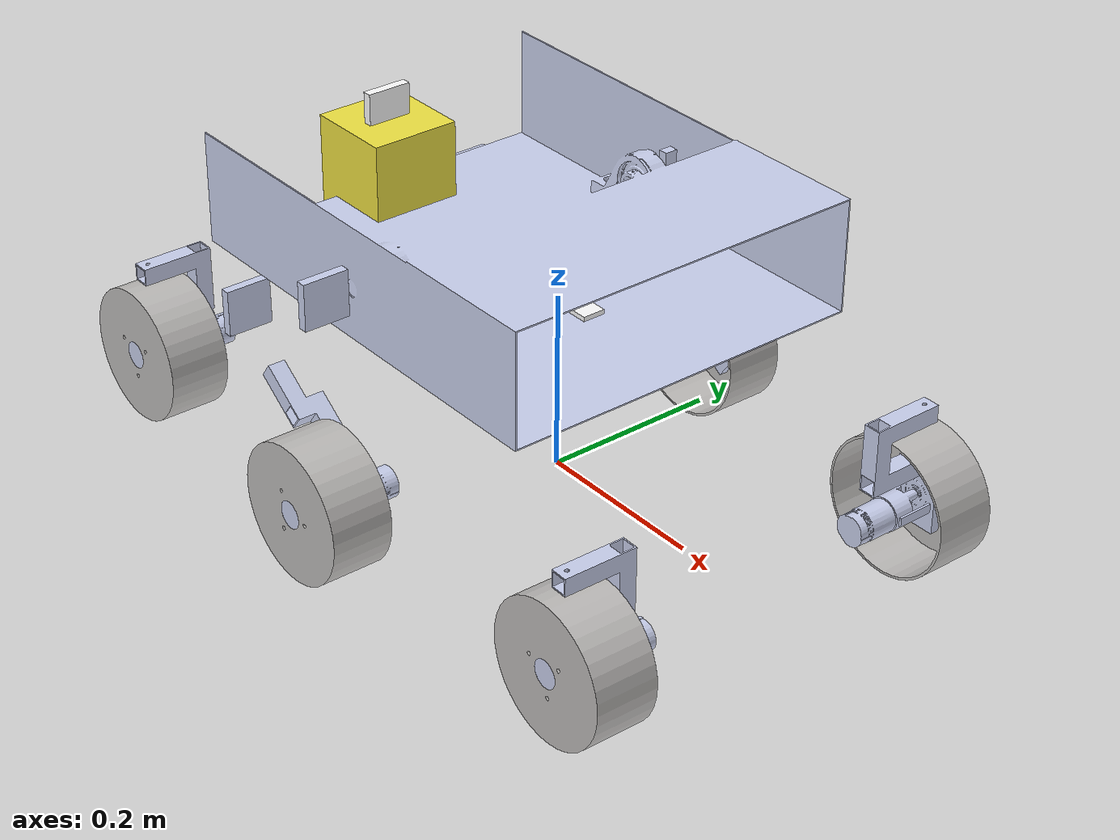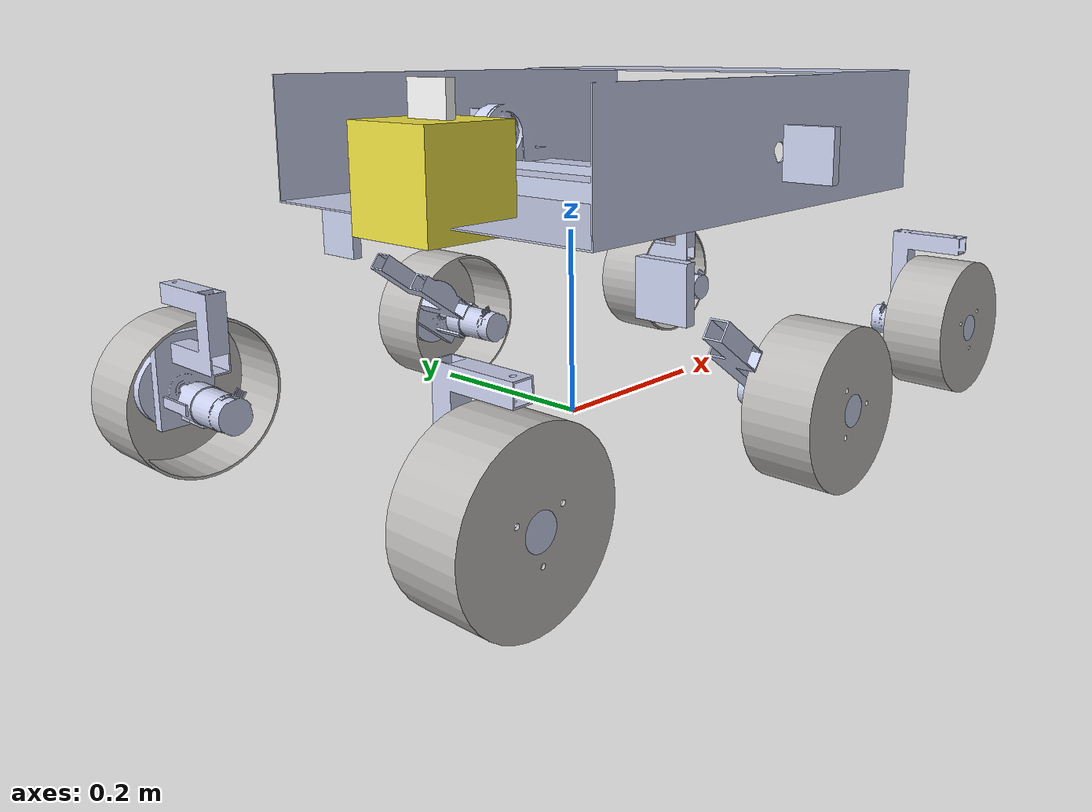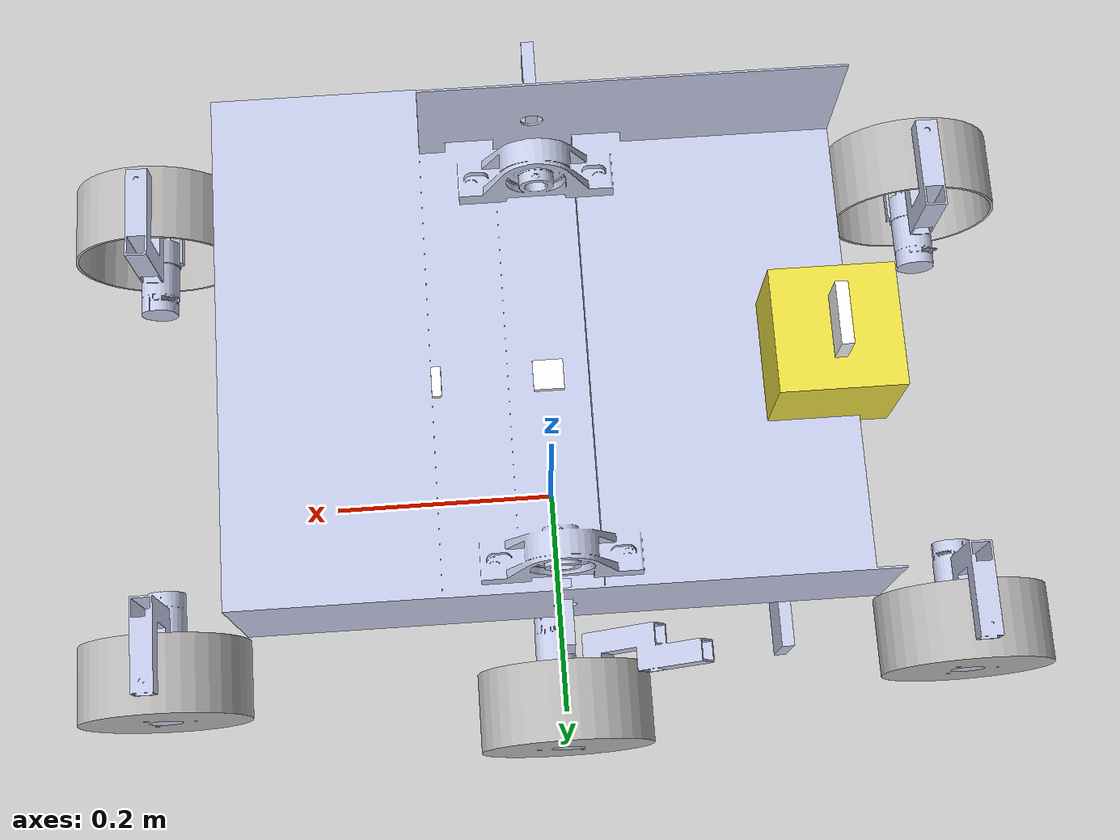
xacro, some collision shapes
<?xml version="1.0" encoding="utf-8"?>
<robot name="rover" xmlns:xacro="http://ros.org/wiki/xacro">
  <xacro:arg name="imu_enable" default="true"/>
  <xacro:arg name="gps_enable" default="true"/>
  <!-- Si el sensor kinect esta habilitado entonces la camara y lidar no lo pueden estar-->
  <xacro:arg name="kinect_enable" default="false"/>
  <xacro:arg name="camera_and_lidar_enable" default="true"/>

  <link name="base_footprint"/>

  <link
    name="Caja">
    <inertial>
      <origin
        xyz="0.019215 0.035889 0.05"
        rpy="0 0 0" />
      <mass
        value="0.85251" />
      <inertia
        ixx="0.0069418"
        ixy="-1.7693E-15"
        ixz="3.7876E-09"
        iyy="0.017066"
        iyz="1.5323E-16"
        izz="0.010668" />
    </inertial>
    <visual>
      <origin
        xyz="0 0 0"
        rpy="0 0 0" />
      <geometry>
        <mesh
          filename="package://rover/meshes/Caja.STL" />
      </geometry>
      <material
        name="">
        <color
          rgba="0.79216 0.81961 0.93333 1" />
      </material>
    </visual>
    <collision>
      <origin
        xyz="0 0 0"
        rpy="0 0 0" />
      <geometry>
        <box size="0.01 0.05 0.05"/>
      </geometry>
    </collision>
  </link>

  <joint
    name="Base_caja"
    type="fixed">
    <origin
      xyz="0 0 0.24353"
      rpy="1.5708 0 0" />
    <parent
      link="base_footprint" />
    <child
      link="Caja" />
    <axis
      xyz="0 0 0" />
  </joint>

  <link
    name="Rocker_izq">
    <inertial>
      <origin
        xyz="-0.080274 -0.041512 0.019003"
        rpy="0 0 0" />
      <mass
        value="0.1082" />
      <inertia
        ixx="8.6219E-05"
        ixy="-7.325E-05"
        ixz="-4.9534E-12"
        iyy="0.00047706"
        iyz="4.152E-13"
        izz="0.00051824" />
    </inertial>
    <visual>
      <origin
        xyz="0 0 0"
        rpy="0 0 0" />
      <geometry>
        <mesh
          filename="package://rover/meshes/Rocker_izq.STL" />
      </geometry>
      <material
        name="">
        <color
          rgba="0.79216 0.81961 0.93333 1" />
      </material>
    </visual>
    <collision>
      <origin
        xyz="0 0 0"
        rpy="0 0 0" />
      <geometry>
        <box size="0.01 0.05 0.05"/>
      </geometry>
    </collision>
  </link>

  <joint
    name="Caja__rocker_izq"
    type="revolute">
    <origin
      xyz="0 0.0533 0.28225"
      rpy="3.1416 0 3.1408" />
    <parent
      link="Caja" />
    <child
      link="Rocker_izq" />
    <limit
      effort="30" velocity="10.0" lower="-3.14159" upper="3.14159" />
    <axis
      xyz="0 0 1" />
  </joint>

  <link
    name="Bogie_izq">
    <inertial>
      <origin
        xyz="0.057154 -0.0066452 -0.011153"
        rpy="0 0 0" />
      <mass
        value="0.051738" />
      <inertia
        ixx="1.4768E-05"
        ixy="-1.5398E-06"
        ixz="2.9101E-19"
        iyy="4.4433E-05"
        iyz="-2.0476E-21"
        izz="5.6518E-05" />
    </inertial>
    <visual>
      <origin
        xyz="0 0 0"
        rpy="0 0 0" />
      <geometry>
        <mesh
          filename="package://rover/meshes/Bogie_izq.STL" />
      </geometry>
      <material
        name="">
        <color
          rgba="0.79216 0.81961 0.93333 1" />
      </material>
    </visual>
    <collision>
      <origin
        xyz="0 0 0"
        rpy="0 0 0" />
      <geometry>
        <box size="0.01 0.05 0.05"/>
      </geometry>
    </collision>
  </link>

  <joint
    name="Rocker_izq__bogie_izq"
    type="revolute">
    <origin
      xyz="0.175396751230297 -0.0942654690027159 0.0229999999999996"
      rpy="0 0 -0.0145421781375742" />
    <parent
      link="Rocker_izq" />
    <child
      link="Bogie_izq" />
    <axis
      xyz="0 0 1" />
    <limit
      effort="30" velocity="10.0" lower="-3.14159" upper="3.14159" />
  </joint>

  <link
    name="Acople_1">
    <inertial>
      <origin
        xyz="9.4449E-06 0.0077088 0.026447"
        rpy="0 0 0" />
      <mass
        value="0.16994" />
      <inertia
        ixx="9.4027E-05"
        ixy="-2.2813E-08"
        ixz="-4.5333E-08"
        iyy="6.2172E-05"
        iyz="1.3902E-06"
        izz="9.2038E-05" />
    </inertial>
    <visual>
      <origin
        xyz="0 0 0"
        rpy="0 0 0" />
      <geometry>
        <mesh
          filename="package://rover/meshes/Acople_1.STL" />
      </geometry>
      <material
        name="">
        <color
          rgba="0.79216 0.81961 0.93333 1" />
      </material>
    </visual>
    <collision>
      <origin
        xyz="0 0 0"
        rpy="0 0 0" />
      <geometry>
        <box size="0.01 0.05 0.05"/>
      </geometry>
    </collision>
  </link>

  <joint
    name="Bogie_izq__acople_1"
    type="continuous">
    <origin
      xyz="0.17745 -0.12528 -0.021025"
      rpy="0 0 0.011289" />
    <parent
      link="Bogie_izq" />
    <child
      link="Acople_1" />
    <axis
      xyz="0 1 0" />
    <limit
      effort="0.98" velocity="6.54498" />
  </joint>

  <link
    name="Rueda_1">
    <inertial>
      <origin
        xyz="0.020364 -5.3429E-16 -1.4322E-14"
        rpy="0 0 0" />
      <mass
        value="0.31746" />
      <inertia
        ixx="0.0014409"
        ixy="-1.7532E-19"
        ixz="3.9312E-19"
        iyy="0.00087534"
        iyz="0"
        izz="0.00087534" />
    </inertial>
    <visual>
      <origin
        xyz="0 0 0"
        rpy="0 0 0" />
      <geometry>
        <mesh
          filename="package://rover/meshes/Rueda_1.STL" />
      </geometry>
      <material
        name="">
        <color
          rgba="0.7451 0.73725 0.72941 1" />
      </material>
    </visual>
    <collision>
      <origin
        xyz="0 0 0"
        rpy="0 0 0" />
      <geometry>
        <mesh
          filename="package://rover/meshes/Rueda_1.STL" />
      </geometry>
    </collision>
  </link>
  <joint
    name="Acople_1__rueda_1"
    type="continuous">
    <origin
      xyz="0 0 -0.011825"
      rpy="3.0964 -1.5708 0" />
    <parent
      link="Acople_1" />
    <child
      link="Rueda_1" />
    <axis
      xyz="1 0 0" />
    <limit
      effort="0.3" velocity="10.0" />
  </joint>

  <link
    name="Acople_2">
    <inertial>
      <origin
        xyz="8.8555E-06 0.0087348 -0.014003"
        rpy="0 0 0" />
      <mass
        value="0.17034" />
      <inertia
        ixx="0.00010208"
        ixy="-2.2828E-08"
        ixz="-4.5333E-08"
        iyy="5.8059E-05"
        iyz="-1.6248E-06"
        izz="0.00010424" />
    </inertial>
    <visual>
      <origin
        xyz="0 0 0"
        rpy="0 0 0" />
      <geometry>
        <mesh
          filename="package://rover/meshes/Acople_2.STL" />
      </geometry>
      <material
        name="">
        <color
          rgba="0.79216 0.81961 0.93333 1" />
      </material>
    </visual>
    <collision>
      <origin
        xyz="0 0 0"
        rpy="0 0 0" />
      <geometry>
        <box size="0.01 0.05 0.05"/>
      </geometry>
    </collision>
  </link>

  <joint
    name="Bogie_izq__acople_2"
    type="fixed">
    <origin
      xyz="-0.17516 -0.13012 -0.0185"
      rpy="0 0 -0.93188" />
    <parent
      link="Bogie_izq" />
    <child
      link="Acople_2" />
    <axis
      xyz="0 0 0" />
  </joint>

  <link
    name="Rueda_2">
    <inertial>
      <origin
        xyz="0.020364 2.2003E-10 -2.5009E-10"
        rpy="0 0 0" />
      <mass
        value="0.31746" />
      <inertia
        ixx="0.0014409"
        ixy="6.1102E-12"
        ixz="-6.9451E-12"
        iyy="0.00087534"
        iyz="-2.183E-19"
        izz="0.00087534" />
    </inertial>
    <visual>
      <origin
        xyz="0 0 0"
        rpy="0 0 0" />
      <geometry>
        <mesh
          filename="package://rover/meshes/Rueda_2.STL" />
      </geometry>
      <material
        name="">
        <color
          rgba="0.7451 0.73725 0.72941 1" />
      </material>
    </visual>
    <collision>
      <origin
        xyz="0 0 0"
        rpy="0 0 0" />
      <geometry>
        <mesh
          filename="package://rover/meshes/Rueda_2.STL" />
      </geometry>
    </collision>
  </link>
  <joint
    name="Acople_2__rueda_2"
    type="continuous">
    <origin
      xyz="0 0 -0.053075"
      rpy="0.39754 -1.5708 0" />
    <parent
      link="Acople_2" />
    <child
      link="Rueda_2" />
    <axis
      xyz="1 0 0" />
    <limit
      effort="0.3" velocity="10.0" />
  </joint>

  <link
    name="Acople_3">
    <inertial>
      <origin
        xyz="9.4449E-06 0.0077088 0.026447"
        rpy="0 0 0" />
      <mass
        value="0.16994" />
      <inertia
        ixx="9.4027E-05"
        ixy="-2.2813E-08"
        ixz="-4.5333E-08"
        iyy="6.2172E-05"
        iyz="1.3902E-06"
        izz="9.2038E-05" />
    </inertial>
    <visual>
      <origin
        xyz="0 0 0"
        rpy="0 0 0" />
      <geometry>
        <mesh
          filename="package://rover/meshes/Acople_3.STL" />
      </geometry>
      <material
        name="">
        <color
          rgba="0.79216 0.81961 0.93333 1" />
      </material>
    </visual>
    <collision>
      <origin
        xyz="0 0 0"
        rpy="0 0 0" />
      <geometry>
        <box size="0.01 0.05 0.05"/>
      </geometry>
    </collision>
  </link>

  <joint
    name="Rocker_izq__acople_3"
    type="continuous">
    <origin
      xyz="-0.34812 -0.22154 0.0019767"
      rpy="0 -0.019032 0" />
    <parent
      link="Rocker_izq" />
    <child
      link="Acople_3" />
    <axis
      xyz="0 1 0" />
    <limit
      effort="0.98" velocity="6.54498" />
  </joint>

  <link
    name="Rueda_3">
    <inertial>
      <origin
        xyz="0.020364 3.8164E-17 1.1102E-16"
        rpy="0 0 0" />
      <mass
        value="0.31746" />
      <inertia
        ixx="0.0014409"
        ixy="8.3242E-19"
        ixz="3.5779E-18"
        iyy="0.00087534"
        iyz="-2.4161E-19"
        izz="0.00087534" />
    </inertial>
    <visual>
      <origin
        xyz="0 0 0"
        rpy="0 0 0" />
      <geometry>
        <mesh
          filename="package://rover/meshes/Rueda_3.STL" />
      </geometry>
      <material
        name="">
        <color
          rgba="0.7451 0.73725 0.72941 1" />
      </material>
    </visual>
    <collision>
      <origin
        xyz="0 0 0"
        rpy="0 0 0" />
      <geometry>
        <mesh
          filename="package://rover/meshes/Rueda_3.STL" />
      </geometry>
    </collision>
  </link>
  <joint
    name="Acople_3__rueda_3"
    type="continuous">
    <origin
      xyz="0 0 -0.011825"
      rpy="2.9847 -1.5708 0" />
    <parent
      link="Acople_3" />
    <child
      link="Rueda_3" />
    <axis
      xyz="1 0 0" />
    <limit
      effort="0.3" velocity="10.0" />
  </joint>

  <link
    name="Rocker_der">
    <inertial>
      <origin
        xyz="-0.080274 -0.041512 0.00334"
        rpy="0 0 0" />
      <mass
        value="0.1082" />
      <inertia
        ixx="8.6219E-05"
        ixy="-7.3251E-05"
        ixz="4.947E-12"
        iyy="0.00047706"
        iyz="-4.8627E-13"
        izz="0.00051824" />
    </inertial>
    <visual>
      <origin
        xyz="0 0 0"
        rpy="0 0 0" />
      <geometry>
        <mesh
          filename="package://rover/meshes/Rocker_der.STL" />
      </geometry>
      <material
        name="">
        <color
          rgba="0.79216 0.81961 0.93333 1" />
      </material>
    </visual>
    <collision>
      <origin
        xyz="0 0 0"
        rpy="0 0 0" />
      <geometry>
        <box size="0.01 0.05 0.05"/>
      </geometry>
    </collision>
  </link>

  <joint
    name="Caja__rocker_der"
    type="revolute">
    <origin
      xyz="0 0.0533 -0.15991"
      rpy="3.1416 0 3.1408" />
    <parent
      link="Caja" />
    <child
      link="Rocker_der" />
    <axis
      xyz="0 0 1" />
    <limit
      effort="30" velocity="10.0" lower="-3.14159" upper="3.14159" />
  </joint>

  <link
    name="Bogie_der">
    <inertial>
      <origin
        xyz="0.057154 -0.0066452 0.011847"
        rpy="0 0 0" />
      <mass
        value="0.051738" />
      <inertia
        ixx="1.4768E-05"
        ixy="-1.5398E-06"
        ixz="-8.0266E-20"
        iyy="4.4433E-05"
        iyz="-2.9194E-20"
        izz="5.6518E-05" />
    </inertial>
    <visual>
      <origin
        xyz="0 0 0"
        rpy="0 0 0" />
      <geometry>
        <mesh
          filename="package://rover/meshes/Bogie_der.STL" />
      </geometry>
      <material
        name="">
        <color
          rgba="0.79216 0.81961 0.93333 1" />
      </material>
    </visual>
    <collision>
      <origin
        xyz="0 0 0"
        rpy="0 0 0" />
      <geometry>
        <box size="0.01 0.05 0.05"/>
      </geometry>
    </collision>
  </link>

  <joint
    name="Rocker_der__bogie_der"
    type="revolute">
    <origin
      xyz="0.1754 -0.094265 -0.00065699"
      rpy="0 0 -0.014542" />
    <parent
      link="Rocker_der" />
    <child
      link="Bogie_der" />
    <axis
      xyz="0 0 1" />
    <limit
      effort="30" velocity="10.0" lower="-3.14159" upper="3.14159" />
  </joint>

  <link
    name="Acople_4">
    <inertial>
      <origin
        xyz="9.4449E-06 0.0077088 0.026447"
        rpy="0 0 0" />
      <mass
        value="0.16994" />
      <inertia
        ixx="9.4027E-05"
        ixy="-2.2813E-08"
        ixz="-4.5333E-08"
        iyy="6.2172E-05"
        iyz="1.3902E-06"
        izz="9.2038E-05" />
    </inertial>
    <visual>
      <origin
        xyz="0 0 0"
        rpy="0 0 0" />
      <geometry>
        <mesh
          filename="package://rover/meshes/Acople_4.STL" />
      </geometry>
      <material
        name="">
        <color
          rgba="0.79216 0.81961 0.93333 1" />
      </material>
    </visual>
    <collision>
      <origin
        xyz="0 0 0"
        rpy="0 0 0" />
      <geometry>
        <box size="0.01 0.05 0.05"/>
      </geometry>
    </collision>
  </link>

  <joint
    name="Bogie_der__acople_4"
    type="continuous">
    <origin
      xyz="0.17745 -0.12528 0.021025"
      rpy="-3.1416 0 -3.1303" />
    <parent
      link="Bogie_der" />
    <child
      link="Acople_4" />
    <axis
      xyz="0 1 0" />
    <limit
      effort="0.98" velocity="6.54498" />
  </joint>

  <link
    name="Rueda_4">
    <inertial>
      <origin
        xyz="0.020364 -7.1609E-15 -1.1657E-14"
        rpy="0 0 0" />
      <mass
        value="0.31746" />
      <inertia
        ixx="0.0014409"
        ixy="4.1287E-19"
        ixz="2.6622E-19"
        iyy="0.00087534"
        iyz="1.8974E-19"
        izz="0.00087534" />
    </inertial>
    <visual>
      <origin
        xyz="0 0 0"
        rpy="0 0 0" />
      <geometry>
        <mesh
          filename="package://rover/meshes/Rueda_4.STL" />
      </geometry>
      <material
        name="">
        <color
          rgba="0.7451 0.73725 0.72941 1" />
      </material>
    </visual>
    <collision>
      <origin
        xyz="0 0 0"
        rpy="0 0 0" />
      <geometry>
        <mesh
          filename="package://rover/meshes/Rueda_4.STL" />
      </geometry>
    </collision>
  </link>
  <joint
    name="Acople_4__rueda_4"
    type="continuous">
    <origin
      xyz="0 0 -0.011825"
      rpy="2.596 -1.5708 0" />
    <parent
      link="Acople_4" />
    <child
      link="Rueda_4" />
    <axis
      xyz="1 0 0" />
    <limit
      effort="0.3" velocity="10.0" />
  </joint>

  <link
    name="Acople_5">
    <inertial>
      <origin
        xyz="8.8534E-06 0.0087348 -0.014003"
        rpy="0 0 0" />
      <mass
        value="0.17034" />
      <inertia
        ixx="0.00010208"
        ixy="-2.283E-08"
        ixz="-4.5341E-08"
        iyy="5.8059E-05"
        iyz="-1.6248E-06"
        izz="0.00010424" />
    </inertial>
    <visual>
      <origin
        xyz="0 0 0"
        rpy="0 0 0" />
      <geometry>
        <mesh
          filename="package://rover/meshes/Acople_5.STL" />
      </geometry>
      <material
        name="">
        <color
          rgba="0.79216 0.81961 0.93333 1" />
      </material>
    </visual>
    <collision>
      <origin
        xyz="0 0 0"
        rpy="0 0 0" />
      <geometry>
        <box size="0.01 0.05 0.05"/>
      </geometry>
    </collision>
  </link>

  <joint
    name="Bogie_der__acople_5"
    type="fixed">
    <origin
      xyz="-0.17516 -0.13012 0.0245"
      rpy="-3.1416 0 2.2097" />
    <parent
      link="Bogie_der" />
    <child
      link="Acople_5" />
    <axis
      xyz="0 0 0" />
  </joint>

  <link
    name="Rueda_5">
    <inertial>
      <origin
        xyz="0.020364 1.3878E-17 2.0817E-17"
        rpy="0 0 0" />
      <mass
        value="0.31746" />
      <inertia
        ixx="0.0014409"
        ixy="4.2337E-19"
        ixz="-1.2727E-19"
        iyy="0.00087534"
        iyz="-5.421E-20"
        izz="0.00087534" />
    </inertial>
    <visual>
      <origin
        xyz="0 0 0"
        rpy="0 0 0" />
      <geometry>
        <mesh
          filename="package://rover/meshes/Rueda_5.STL" />
      </geometry>
      <material
        name="">
        <color
          rgba="0.7451 0.73725 0.72941 1" />
      </material>
    </visual>
    <collision>
      <origin
        xyz="0 0 0"
        rpy="0 0 0" />
      <geometry>
        <mesh
          filename="package://rover/meshes/Rueda_5.STL" />
      </geometry>
    </collision>
  </link>
  <joint
    name="Acople_5__rueda_5"
    type="continuous">
    <origin
      xyz="0 0 -0.053075"
      rpy="2.744 -1.5708 0" />
    <parent
      link="Acople_5" />
    <child
      link="Rueda_5" />
    <axis
      xyz="1 0 0" />
    <limit
      effort="0.3" velocity="10.0" />
  </joint>

  <link
    name="Acople_6">
    <inertial>
      <origin
        xyz="9.4449E-06 0.0077088 0.026447"
        rpy="0 0 0" />
      <mass
        value="0.16994" />
      <inertia
        ixx="9.4027E-05"
        ixy="-2.2813E-08"
        ixz="-4.5333E-08"
        iyy="6.2172E-05"
        iyz="1.3902E-06"
        izz="9.2038E-05" />
    </inertial>
    <visual>
      <origin
        xyz="0 0 0"
        rpy="0 0 0" />
      <geometry>
        <mesh
          filename="package://rover/meshes/Acople_6.STL" />
      </geometry>
      <material
        name="">
        <color
          rgba="0.79216 0.81961 0.93333 1" />
      </material>
    </visual>
    <collision>
      <origin
        xyz="0 0 0"
        rpy="0 0 0" />
      <geometry>
        <box size="0.01 0.05 0.05"/>
      </geometry>
    </collision>
  </link>

  <joint
    name="Rocker_der__acople_6"
    type="continuous">
    <origin
      xyz="-0.3483 -0.22154 0.020368"
      rpy="3.1416 0 -3.1416" />
    <parent
      link="Rocker_der" />
    <child
      link="Acople_6" />
    <axis
      xyz="0 1 0" />
    <limit
      effort="0.98" velocity="6.54498" />
  </joint>

  <link
    name="Rueda_6">
    <inertial>
      <origin
        xyz="0.020364 -7.1054E-15 -1.1491E-14"
        rpy="0 0 0" />
      <mass
        value="0.31746" />
      <inertia
        ixx="0.0014409"
        ixy="-2.6304E-19"
        ixz="7.5089E-19"
        iyy="0.00087534"
        iyz="5.421E-20"
        izz="0.00087534" />
    </inertial>
    <visual>
      <origin
        xyz="0 0 0"
        rpy="0 0 0" />
      <geometry>
        <mesh
          filename="package://rover/meshes/Rueda_6.STL" />
      </geometry>
      <material
        name="">
        <color
          rgba="0.7451 0.73725 0.72941 1" />
      </material>
    </visual>
    <collision>
      <origin
        xyz="0 0 0"
        rpy="0 0 0" />
      <geometry>
        <mesh
          filename="package://rover/meshes/Rueda_6.STL" />
      </geometry>
    </collision>
  </link>
  <joint
    name="Acople_6__rueda_6"
    type="continuous">
    <origin
      xyz="0 0 -0.011825"
      rpy="2.5927 -1.5708 0" />
    <parent
      link="Acople_6" />
    <child
      link="Rueda_6" />
    <axis
      xyz="1 0 0" />
    <limit
      effort="0.3" velocity="10.0" />
  </joint>

  <!-- ____________________________________ACTUADORES____________________________________ -->
  <!-- MOTORREDUCTORES DE LAS RUEDAS -->
  <transmission name="tranmission_1">
      <type>transmission_interface/SimpleTransmission</type>
      <joint name="Acople_1__rueda_1">
          <hardwareInterface>hardware_interface/VelocityJointInterface</hardwareInterface>
      </joint>
      <actuator name="left_motor_1">
          <mechanicalReduction>1</mechanicalReduction>
      </actuator>
  </transmission>

  <transmission name="tranmission_2">
      <type>transmission_interface/SimpleTransmission</type>
      <joint name="Acople_2__rueda_2">
          <hardwareInterface>hardware_interface/VelocityJointInterface</hardwareInterface>
      </joint>
      <actuator name="left_motor_2">
          <mechanicalReduction>1</mechanicalReduction>
      </actuator>
  </transmission>

  <transmission name="tranmission_3">
      <type>transmission_interface/SimpleTransmission</type>
      <joint name="Acople_3__rueda_3">
          <hardwareInterface>hardware_interface/VelocityJointInterface</hardwareInterface>
      </joint>
      <actuator name="left_motor_3">
          <mechanicalReduction>1</mechanicalReduction>
      </actuator>
  </transmission>

  <transmission name="tranmission_4">
      <type>transmission_interface/SimpleTransmission</type>
      <joint name="Acople_4__rueda_4">
          <hardwareInterface>hardware_interface/VelocityJointInterface</hardwareInterface>
      </joint>
      <actuator name="right_motor_1">
          <mechanicalReduction>1</mechanicalReduction>
      </actuator>
  </transmission>

  <transmission name="tranmission_5">
      <type>transmission_interface/SimpleTransmission</type>
      <joint name="Acople_5__rueda_5">
          <hardwareInterface>hardware_interface/VelocityJointInterface</hardwareInterface>
      </joint>
      <actuator name="right_motor_2">
          <mechanicalReduction>1</mechanicalReduction>
      </actuator>
  </transmission>

  <transmission name="tranmission_6">
      <type>transmission_interface/SimpleTransmission</type>
      <joint name="Acople_6__rueda_6">
          <hardwareInterface>hardware_interface/VelocityJointInterface</hardwareInterface>
      </joint>
      <actuator name="right_motor_3">
          <mechanicalReduction>1</mechanicalReduction>
      </actuator>
  </transmission>

  <!-- SERVOMOTORES DE DIRECCION DE LAS LLANTAS -->
  <transmission name="tranmission_7">
      <type>transmission_interface/SimpleTransmission</type>
      <joint name="Bogie_izq__acople_1">
          <hardwareInterface>hardware_interface/EffortJointInterface</hardwareInterface>
      </joint>
      <actuator name="dir_left_llanta_1">
          <mechanicalReduction>1</mechanicalReduction>
      </actuator>
  </transmission>

  <transmission name="tranmission_8">
      <type>transmission_interface/SimpleTransmission</type>
      <joint name="Rocker_izq__acople_3">
          <hardwareInterface>hardware_interface/EffortJointInterface</hardwareInterface>
      </joint>
      <actuator name="dir_left_llanta_3">
          <mechanicalReduction>1</mechanicalReduction>
      </actuator>
  </transmission>

  <transmission name="tranmission_9">
      <type>transmission_interface/SimpleTransmission</type>
      <joint name="Bogie_der__acople_4">
          <hardwareInterface>hardware_interface/EffortJointInterface</hardwareInterface>
      </joint>
      <actuator name="dir_right_llanta_1">
          <mechanicalReduction>1</mechanicalReduction>
      </actuator>
  </transmission>

  <transmission name="tranmission_10">
      <type>transmission_interface/SimpleTransmission</type>
      <joint name="Rocker_der__acople_6">
          <hardwareInterface>hardware_interface/EffortJointInterface</hardwareInterface>
      </joint>
      <actuator name="dir_right_llanta_3">
          <mechanicalReduction>1</mechanicalReduction>
      </actuator>
  </transmission>

  <!-- NIVELADORES DE CAJA -->
  <transmission name="tranmission_11">
      <type>transmission_interface/SimpleTransmission</type>
      <joint name="Caja__rocker_izq">
          <hardwareInterface>hardware_interface/EffortJointInterface</hardwareInterface>
      </joint>
      <actuator name="rocker_izq">
          <hardwareInterface>hardware_interface/EffortJointInterface</hardwareInterface>
      </actuator>
  </transmission>

  <transmission name="tranmission_12">
      <type>transmission_interface/SimpleTransmission</type>
      <joint name="Caja__rocker_der">
          <hardwareInterface>hardware_interface/EffortJointInterface</hardwareInterface>
      </joint>
      <actuator name="rocker_der">
          <mechanicalReduction>1</mechanicalReduction>
      </actuator>
  </transmission>

  <!-- ASEGURADORES DE LA UNIONES ENTRE ROCKERS Y BOGIES -->
  <transmission name="tranmission_13">
      <type>transmission_interface/SimpleTransmission</type>
      <joint name="Rocker_izq__bogie_izq">
          <hardwareInterface>hardware_interface/EffortJointInterface</hardwareInterface>
      </joint>
      <actuator name="bogie_izq">
          <hardwareInterface>hardware_interface/EffortJointInterface</hardwareInterface>
      </actuator>
  </transmission>

  <transmission name="tranmission_14">
      <type>transmission_interface/SimpleTransmission</type>
      <joint name="Rocker_der__bogie_der">
          <hardwareInterface>hardware_interface/EffortJointInterface</hardwareInterface>
      </joint>
      <actuator name="bogie_der">
          <hardwareInterface>hardware_interface/EffortJointInterface</hardwareInterface>
      </actuator>
  </transmission>

  <gazebo>
      <plugin name="gazebo_ros_control" filename="libgazebo_ros_control.so">
          <robotNamespace>/</robotNamespace>
      </plugin>
   </gazebo>

  <!-- ____________________________________SENSORES____________________________________ -->
  <!-- SENSOR KINECT -->
  <xacro:if value="$(arg kinect_enable)">
    <xacro:include filename="$(find rover)/urdf/kinect.gazebo.xacro" />
    <link name="Sensor_kinect">
      <inertial>
        <origin
          xyz="0 0 0"
          rpy="0 0 0" />
        <mass
          value="0.01" />
        <inertia
          ixx="0.0001"
          ixy="0.0"
          ixz="0.0"
          iyy="0.0001"
          iyz="0.0"
          izz="0.0001" />
      </inertial>
      <visual>
        <origin
          xyz="0 0 0"
          rpy="0 0 0" />
        <geometry>
          <mesh
            filename="package://rover/meshes/sensor_kinect.stl"
            scale= "0.01 0.01 0.01"/>
        </geometry>
        <material
          name="">
          <color
            rgba="1 1 1 1" />
        </material>
      </visual>
      <collision>
        <origin
          xyz="0 0 0"
          rpy="0 0 0" />
        <geometry>
          <mesh
            filename="package://rover/meshes/sensor_kinect.stl"
            scale= "0.01 0.01 0.01"/>
        </geometry>
      </collision>
    </link>

    <joint
      name="Caja_kinect"
      type="fixed">
      <origin
        xyz="-0.245 0.035 -0.1"
        rpy="-1.570709 -1.570709 0" />
      <parent
        link="Caja" />
      <child
        link="Sensor_kinect" />
      <axis
        xyz="0 0 0" />
    </joint>

    <link name="camera_depth_frame"/>

    <joint name="camera_depth_joint" type="fixed">
      <origin xyz="0.147 0.0 0.02" rpy="0.0 0.0 -1.5707"/>
      <parent link="Sensor_kinect"/>
      <child link="camera_depth_frame"/>
    </joint>

    <link name="camera_rgb_frame"/>

    <joint name="camera_rgb_joint" type="fixed">
      <origin xyz="0.076 0.0 0.02" rpy="0.0 0.0 -1.5707"/>
      <parent link="Sensor_kinect"/>
      <child link="camera_rgb_frame"/>
    </joint>
  </xacro:if>

  <!-- CAMARA Y LIDAR -->
  <xacro:if value="$(arg camera_and_lidar_enable)">
    <xacro:include filename="$(find rover)/urdf/camera.gazebo.xacro" />
    <xacro:include filename="$(find rover)/urdf/lidar.gazebo.xacro" />
    <link name="Camera">
      <inertial>
        <origin
          xyz="0 0 0"
          rpy="0 0 0" />
        <mass
          value="0.025" />
        <inertia
          ixx="0.0001"
          ixy="0.0"
          ixz="0.0"
          iyy="0.0001"
          iyz="0.0"
          izz="0.0001" />
      </inertial>
      <visual>
        <origin
          xyz="0 0 0"
          rpy="0 0 0" />
        <geometry>
          <box size="0.01 0.05 0.05"/>
        </geometry>
        <material
          name="">
          <color
            rgba="1 1 1 1" />
        </material>
      </visual>
      <collision>
        <origin
          xyz="0 0 0"
          rpy="0 0 0" />
        <geometry>
          <box size="0.01 0.05 0.05"/>
        </geometry>
      </collision>
    </link>

    <joint
      name="Caja_camera"
      type="fixed">
      <origin
        xyz="-0.225 0.095 0.047"
        rpy="-1.570709 3.141592 0" />
      <parent
        link="Caja" />
      <child
        link="Camera" />
      <axis
        xyz="0 0 0" />
    </joint>

    <link name="Lidar">
      <collision>
        <origin xyz="0 0 0" rpy="0 0 0"/>
        <geometry>
      <box size="0.1 0.1 0.1"/>
        </geometry>
      </collision>

      <visual>
        <origin xyz="0 0 0" rpy="0 0 0"/>
        <geometry>
          <mesh filename="package://rover/meshes/hokuyo.dae"/>
        </geometry>
      </visual>

      <inertial>
        <mass value="1e-5" />
        <origin xyz="0 0 0" rpy="0 0 0"/>
        <inertia ixx="1e-6" ixy="0" ixz="0" iyy="1e-6" iyz="0" izz="1e-6" />
      </inertial>
    </link>

    <joint
      name="Caja_lidar"
      type="fixed">
      <origin
        xyz="-0.225 0.035 0.047"
        rpy="-1.570709 -3.141592 0" />
      <parent
        link="Caja" />
      <child
        link="Lidar" />
      <axis
        xyz="0 0 0" />
    </joint>
  </xacro:if>

  <!-- SENSOR IMU -->
  <xacro:if value="$(arg imu_enable)">
    <xacro:include filename="$(find rover)/urdf/imu.gazebo.xacro" />
    <link name="IMU">
      <inertial>
        <origin
          xyz="0 0 0"
          rpy="0 0 0" />
        <mass
          value="0.005" />
        <inertia
          ixx="0.00001"
          ixy="0.0"
          ixz="0.0"
          iyy="0.00001"
          iyz="0.0"
          izz="0.00001" />
      </inertial>
      <visual>
        <origin
          xyz="0 0 0"
          rpy="0 0 0" />
        <geometry>
          <box size="0.025 0.005 0.025"/>
        </geometry>
        <material
          name="">
          <color
            rgba="1 1 1 1" />
        </material>
      </visual>
      <collision>
        <origin
          xyz="0 0 0"
          rpy="0 0 0" />
        <geometry>
          <box size="0.025 0.005 0.025"/>
        </geometry>
      </collision>
    </link>

    <joint
      name="Caja_IMU"
      type="fixed">
      <origin
        xyz="0 0.0025 0.047"
        rpy="0 0 0" />
      <parent
        link="Caja" />
      <child
        link="IMU" />
      <axis
        xyz="0 0 0" />
    </joint>
  </xacro:if>

  <xacro:if value="$(arg gps_enable)">
    <xacro:include filename="$(find rover)/urdf/gps.gazebo.xacro" />
    <link name="GPS">
      <inertial>
        <origin
          xyz="0 0 0"
          rpy="0 0 0" />
        <mass
          value="0.005" />
        <inertia
          ixx="0.00001"
          ixy="0.0"
          ixz="0.0"
          iyy="0.00001"
          iyz="0.0"
          izz="0.00001" />
      </inertial>
      <visual>
        <origin
          xyz="0 0 0"
          rpy="0 0 0" />
        <geometry>
          <box size="0.025 0.005 0.025"/>
        </geometry>
        <material
          name="">
          <color
            rgba="1 1 1 1" />
        </material>
      </visual>
      <collision>
        <origin
          xyz="0 0 0"
          rpy="0 0 0" />
        <geometry>
          <box size="0.025 0.005 0.025"/>
        </geometry>
      </collision>
    </link>

    <joint
      name="Caja_GPS"
      type="fixed">
      <origin
        xyz="0.1 0.0025 0.047"
        rpy="0 0 0" />
      <parent
        link="Caja" />
      <child
        link="GPS" />
      <axis
        xyz="0 0 0" />
    </joint>
  </xacro:if>
</robot>
